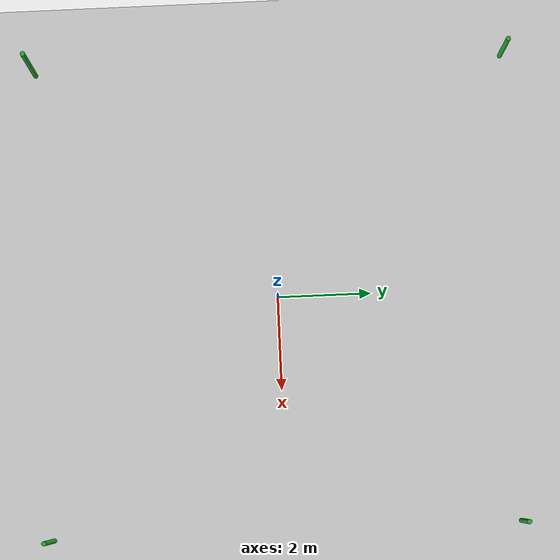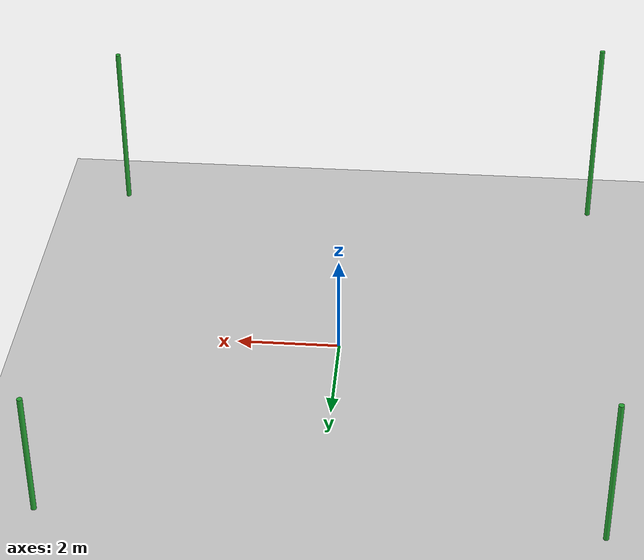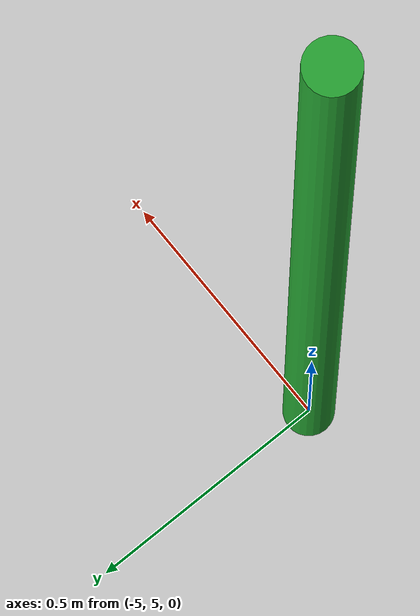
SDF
<?xml version="1.0"?>
<sdf version='1.7'>
  <world name='default'>
    <light name='sun' type='directional'>
      <cast_shadows>1</cast_shadows>
      <pose>0 0 10 0 -0 0</pose>
      <diffuse>0.6 0.6 0.6 1</diffuse>
      <specular>0.1 0.1 0.1 1</specular>
      <attenuation>
        <range>1000</range>
        <constant>0.7</constant>
        <linear>0.01</linear>
        <quadratic>0.001</quadratic>
      </attenuation>
      <direction>-0.5 0.1 -0.9</direction>
      <spot>
        <inner_angle>0</inner_angle>
        <outer_angle>0</outer_angle>
        <falloff>0</falloff>
      </spot>
  </light>
    <model name='ground_plane'>
      <static>1</static>
      <link name='link'>
        <collision name='collision'>
          <geometry>
            <plane>
              <normal>0 0 1</normal>
              <size>100 100</size>
            </plane>
          </geometry>
          <surface>
            <contact>
              <collide_bitmask>65535</collide_bitmask>
              <ode/>
            </contact>
            <friction>
              <ode>
                <mu>100</mu>
                <mu2>50</mu2>
              </ode>
              <torsional>
                <ode/>
              </torsional>
            </friction>
            <bounce/>
          </surface>
          <max_contacts>10</max_contacts>
        </collision>
        <visual name='visual'>
          <cast_shadows>0</cast_shadows>
          <geometry>
            <plane>
              <normal>0 0 1</normal>
              <size>100 100</size>
            </plane>
          </geometry>
          <material>
            <script>
              <uri>file://media/materials/scripts/gazebo.material</uri>
              <name>Gazebo/Grey</name>
            </script>
          </material>
        </visual>
        <self_collide>0</self_collide>
        <enable_wind>0</enable_wind>
        <kinematic>0</kinematic>
      </link>
    </model>
    <gravity>0 0 -9.8</gravity>
    <magnetic_field>6e-06 2.3e-05 -4.2e-05</magnetic_field>
    <atmosphere type='adiabatic'/>
    <physics type='ode'>
      <max_step_size>0.001</max_step_size>
      <real_time_factor>1</real_time_factor>
      <real_time_update_rate>1000</real_time_update_rate>
    </physics>
    <scene>
      <ambient>0.5 0.5 0.5 1</ambient>
      <sky>
        <clouds>
          <speed>12</speed>
        </clouds>
      </sky>
      <shadows>0</shadows>
      <grid>false</grid>
    </scene>
    <spherical_coordinates>
      <surface_model>EARTH_WGS84</surface_model>
      <latitude_deg>0</latitude_deg>
      <longitude_deg>0</longitude_deg>
      <elevation>0</elevation>
      <heading_deg>0</heading_deg>
    </spherical_coordinates>
    <model name='unit_cylinder'>
      <pose>-5 -5 2 0 0 0</pose>
      <static>1</static>
      <link name='link'>
        <visual name='visual'>
          <geometry>
            <cylinder>
              <radius>0.05</radius>
              <length>4</length>
            </cylinder>
          </geometry>
          <material>
            <script>
              <name>Gazebo/Green</name>
              <uri>file://media/materials/scripts/gazebo.material</uri>
            </script>
          </material>
        </visual>
        <self_collide>0</self_collide>
        <enable_wind>0</enable_wind>
        <kinematic>0</kinematic>
      </link>
    </model>
    <model name='unit_cylinder_clone'>
      <pose>-5 5 1.5 0 0 0</pose>
      <static>1</static>
      <link name='link'>
        <visual name='visual'>
          <geometry>
            <cylinder>
              <radius>0.05</radius>
              <length>3</length>
            </cylinder>
          </geometry>
          <material>
            <script>
              <name>Gazebo/Green</name>
              <uri>file://media/materials/scripts/gazebo.material</uri>
            </script>
          </material>
        </visual>
        <self_collide>0</self_collide>
        <enable_wind>0</enable_wind>
        <kinematic>0</kinematic>
      </link>
    </model>
    <model name='unit_cylinder_clone_0'>
      <pose>5 5 1.25 0 0 0</pose>
      <static>1</static>
      <link name='link'>
        <visual name='visual'>
          <geometry>
            <cylinder>
              <radius>0.05</radius>
              <length>2.5</length>
            </cylinder>
          </geometry>
          <material>
            <script>
              <name>Gazebo/Green</name>
              <uri>file://media/materials/scripts/gazebo.material</uri>
            </script>
          </material>
        </visual>
        <self_collide>0</self_collide>
        <enable_wind>0</enable_wind>
        <kinematic>0</kinematic>
      </link>
    </model>
    <model name='unit_cylinder_clone_1'>
      <pose>5 -5 1.75 0 0 0</pose>
      <static>1</static>
      <link name='link'>
        <visual name='visual'>
          <geometry>
            <cylinder>
              <radius>0.05</radius>
              <length>3.5</length>
            </cylinder>
          </geometry>
          <material>
            <script>
              <name>Gazebo/Green</name>
              <uri>file://media/materials/scripts/gazebo.material</uri>
            </script>
          </material>
        </visual>
        <self_collide>0</self_collide>
        <enable_wind>0</enable_wind>
        <kinematic>0</kinematic>
      </link>
    </model>
    <gui fullscreen='0'>
      <camera name='user_camera'>
        <pose>-39.9672 42.0802 28.8387 0 0.437797 -0.894993</pose>
        <view_controller>orbit</view_controller>
        <projection_type>perspective</projection_type>
      </camera>
    </gui>
  </world>
</sdf>
